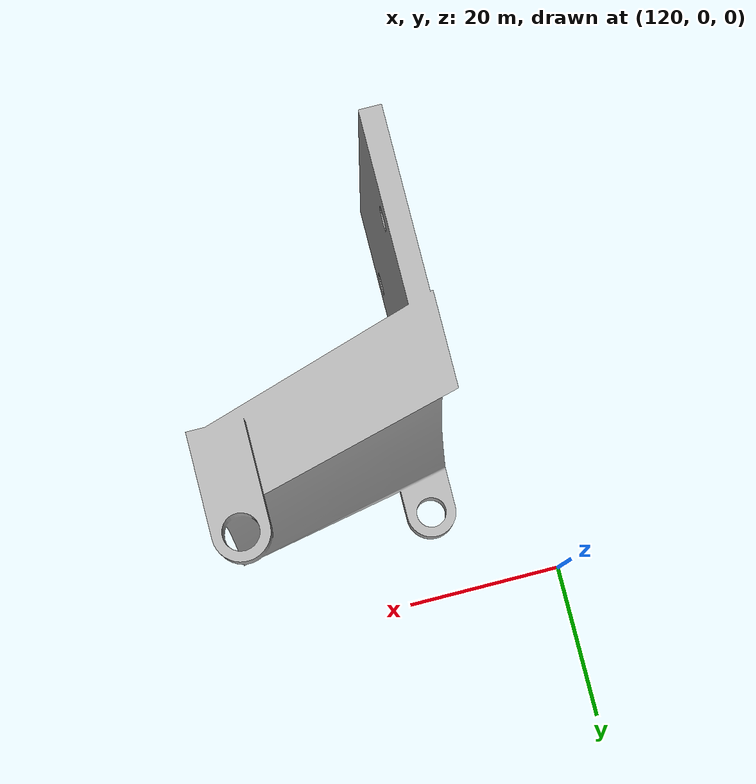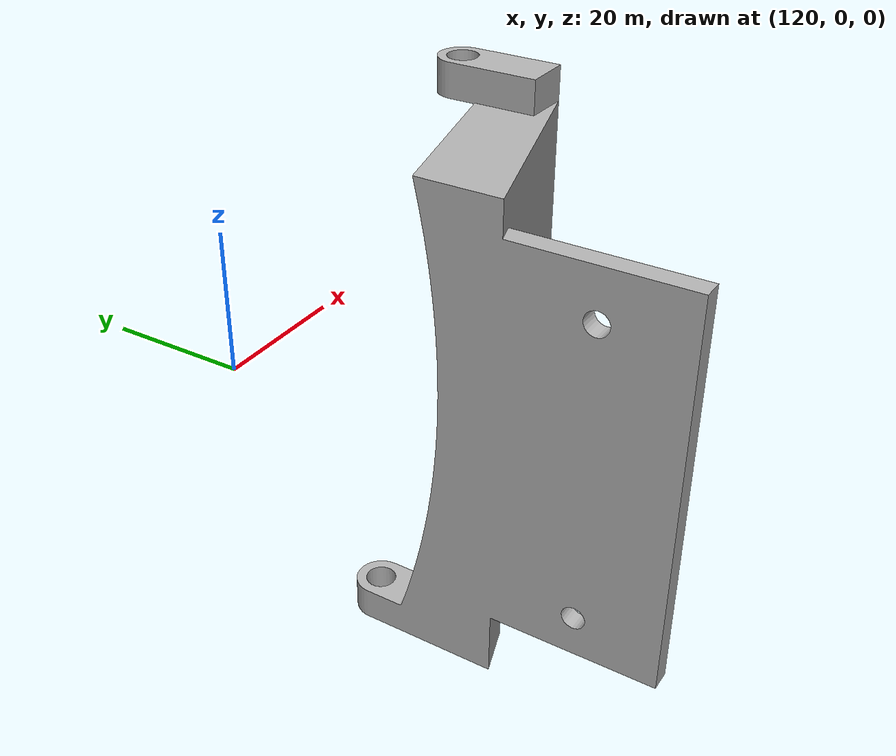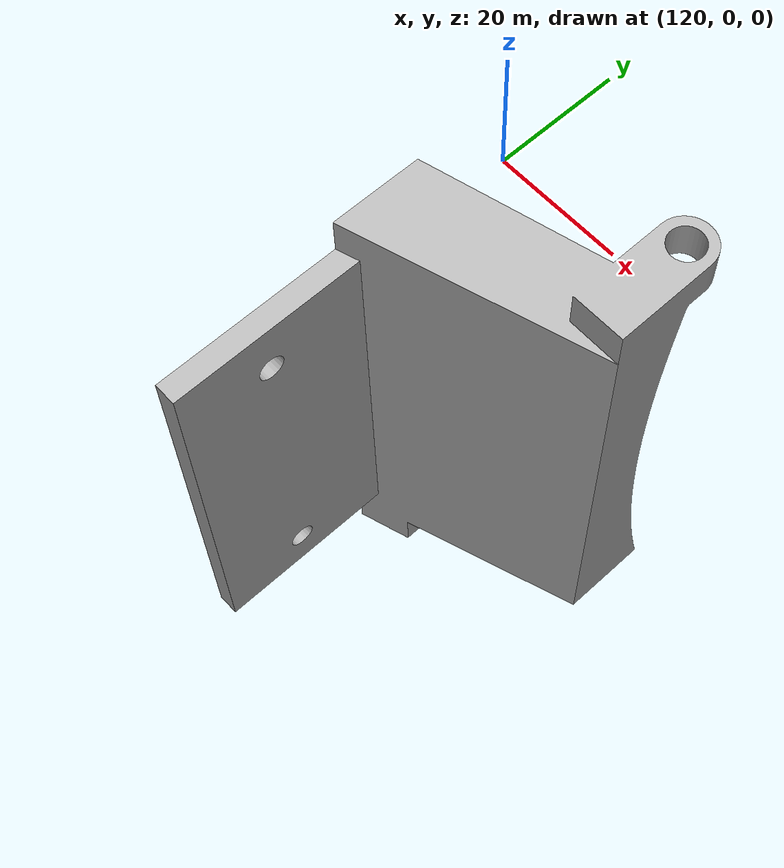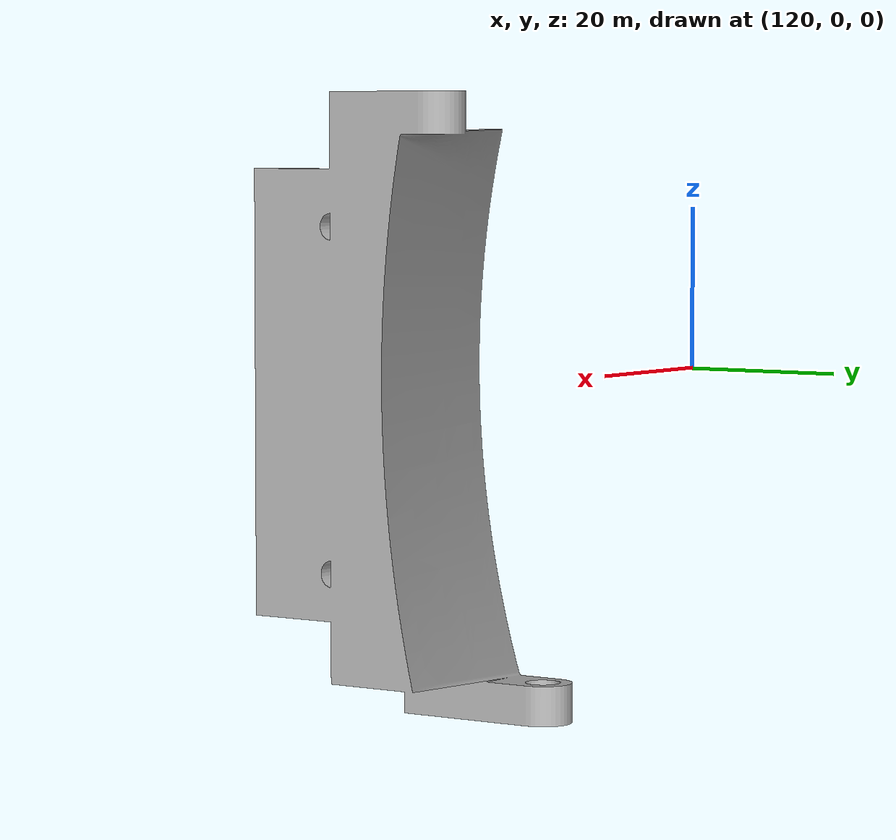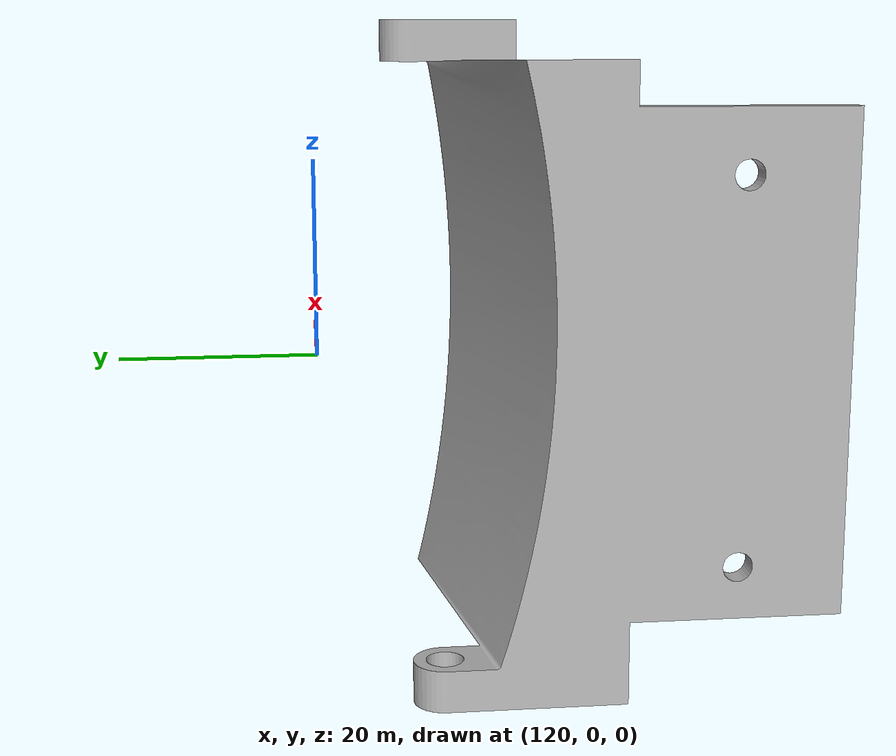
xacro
<?xml version="1.0"?>
<robot
    xmlns:xacro="http://ros.org/wiki/xacro" name="youbot">

    <link name="world"/>
    <joint name="world" type="fixed">
        <parent link="world"/>
        <child link="base_link"/>
    </joint>
    <link name = "base_link">
        <visual>
            <geometry>
                <mesh filename = "package://urdf_tutorial/meshes/collision/d435i_holder_v2.stl"/>
            </geometry>
            <origin xyz = "0 0 0" rpy = "0 0 0"/>
            <material name="LightGrey">
                <color rgba="0.7 0.7 0.7 1.0"/>
            </material>
        </visual>

    </link>
</robot>
